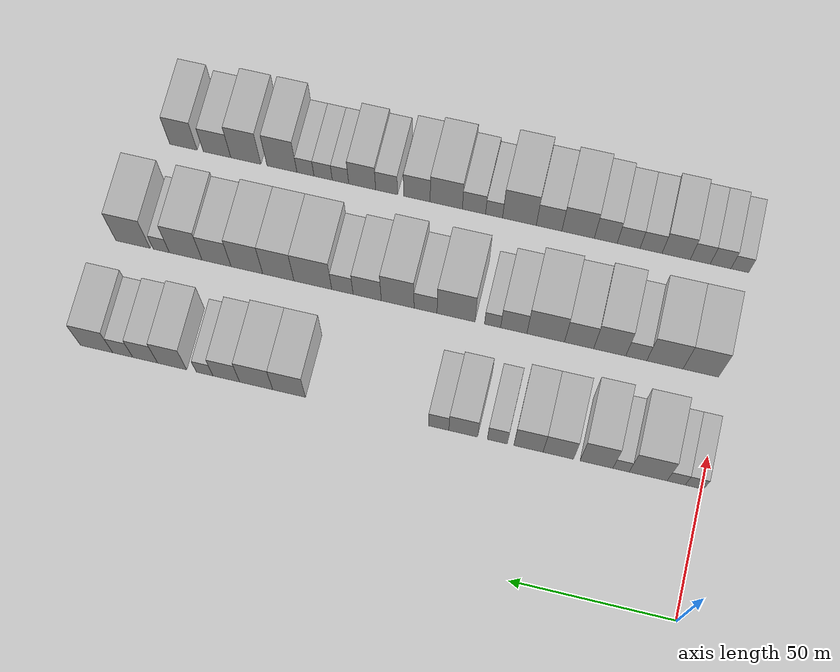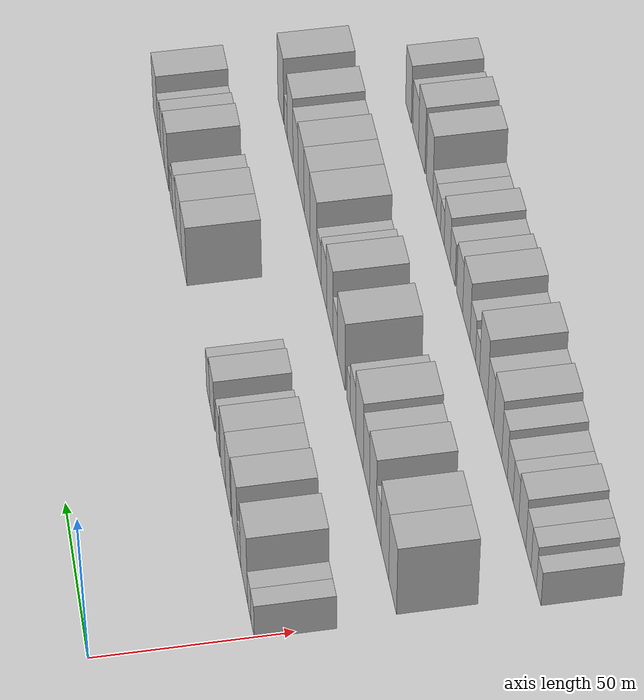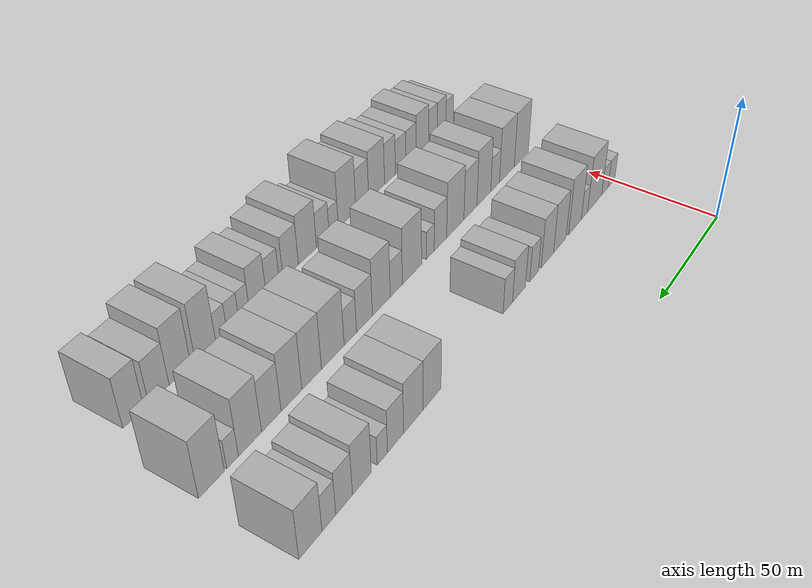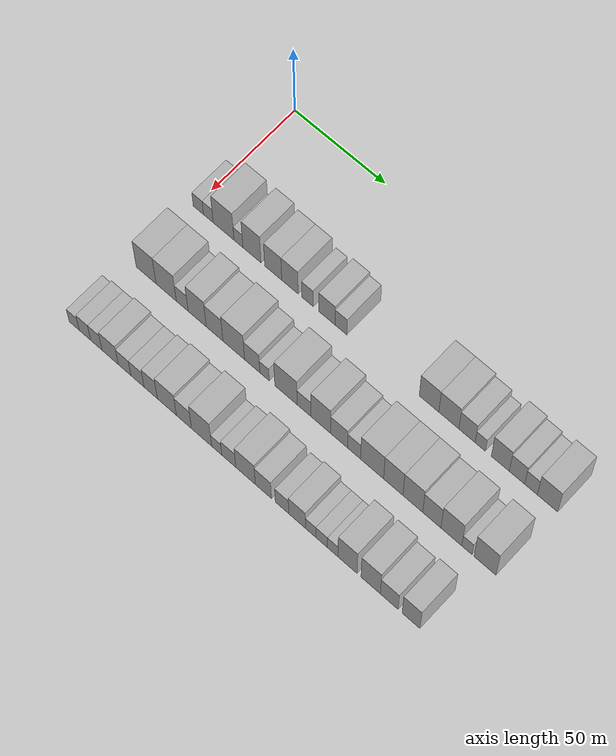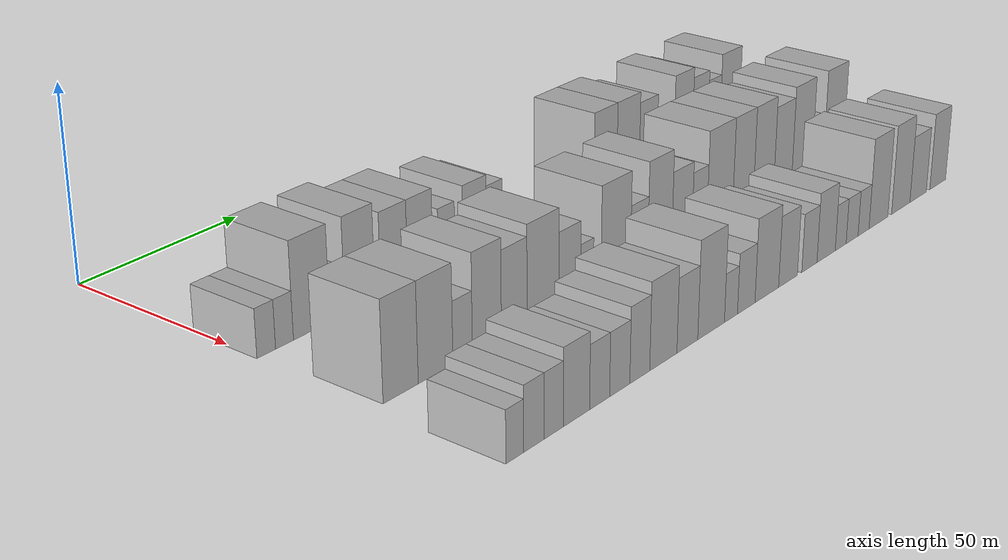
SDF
<sdf version="1.6">
 <world name="default">
  <model name="building_44">
   <static>1</static>
   <pose>50.0000 2.2003 0 0.000000 0.000000 0.000000</pose>
   <link name="link">
    <pose>0 0 6.00 0 0 0</pose>
    <collision name="collision"><geometry><box><size>20.0000 5.6250 12.0000</size></box></geometry></collision>
    <visual name="visual">
     <cast_shadows>0</cast_shadows>
     <geometry><box><size>20.0000 5.6250 12.0000</size></box></geometry>
     <material>
      <script>
       <uri>model://HANNAS_wall/materials/scripts</uri>
       <uri>model://HANNAS_wall/materials/textures</uri>
       <name>vrc/HANNAS_wall</name>
      </script>
     </material>
    </visual>
   </link>
  </model>
  <model name="building_45">
   <static>1</static>
   <pose>50.0000 7.7510 0 0.000000 0.000000 0.000000</pose>
   <link name="link">
    <pose>0 0 6.00 0 0 0</pose>
    <collision name="collision"><geometry><box><size>20.0000 5.4763 12.0000</size></box></geometry></collision>
    <visual name="visual">
     <cast_shadows>0</cast_shadows>
     <geometry><box><size>20.0000 5.4763 12.0000</size></box></geometry>
     <material>
      <script>
       <uri>model://HANNAS_wall/materials/scripts</uri>
       <uri>model://HANNAS_wall/materials/textures</uri>
       <name>vrc/HANNAS_wall</name>
      </script>
     </material>
    </visual>
   </link>
  </model>
  <model name="building_46">
   <static>1</static>
   <pose>50.0000 16.2468 0 0.000000 0.000000 0.000000</pose>
   <link name="link">
    <pose>0 0 12.00 0 0 0</pose>
    <collision name="collision"><geometry><box><size>20.0000 11.5153 24.0000</size></box></geometry></collision>
    <visual name="visual">
     <cast_shadows>0</cast_shadows>
     <geometry><box><size>20.0000 11.5153 24.0000</size></box></geometry>
     <material>
      <script>
       <uri>model://HANNAS_wall/materials/scripts</uri>
       <uri>model://HANNAS_wall/materials/textures</uri>
       <name>vrc/HANNAS_wall</name>
      </script>
     </material>
    </visual>
   </link>
  </model>
  <model name="building_47">
   <static>1</static>
   <pose>50.0000 24.4752 0 0.000000 0.000000 0.000000</pose>
   <link name="link">
    <pose>0 0 6.00 0 0 0</pose>
    <collision name="collision"><geometry><box><size>20.0000 4.9416 12.0000</size></box></geometry></collision>
    <visual name="visual">
     <cast_shadows>0</cast_shadows>
     <geometry><box><size>20.0000 4.9416 12.0000</size></box></geometry>
     <material>
      <script>
       <uri>model://HANNAS_wall/materials/scripts</uri>
       <uri>model://HANNAS_wall/materials/textures</uri>
       <name>vrc/HANNAS_wall</name>
      </script>
     </material>
    </visual>
   </link>
  </model>
  <model name="building_48">
   <static>1</static>
   <pose>50.0000 31.9420 0 0.000000 0.000000 0.000000</pose>
   <link name="link">
    <pose>0 0 12.00 0 0 0</pose>
    <collision name="collision"><geometry><box><size>20.0000 9.9919 24.0000</size></box></geometry></collision>
    <visual name="visual">
     <cast_shadows>0</cast_shadows>
     <geometry><box><size>20.0000 9.9919 24.0000</size></box></geometry>
     <material>
      <script>
       <uri>model://HANNAS_wall/materials/scripts</uri>
       <uri>model://HANNAS_wall/materials/textures</uri>
       <name>vrc/HANNAS_wall</name>
      </script>
     </material>
    </visual>
   </link>
  </model>
  <model name="building_49">
   <static>1</static>
   <pose>50.0000 43.5863 0 0.000000 0.000000 0.000000</pose>
   <link name="link">
    <pose>0 0 10.50 0 0 0</pose>
    <collision name="collision"><geometry><box><size>20.0000 9.2966 21.0000</size></box></geometry></collision>
    <visual name="visual">
     <cast_shadows>0</cast_shadows>
     <geometry><box><size>20.0000 9.2966 21.0000</size></box></geometry>
     <material>
      <script>
       <uri>model://HANNAS_wall/materials/scripts</uri>
       <uri>model://HANNAS_wall/materials/textures</uri>
       <name>vrc/HANNAS_wall</name>
      </script>
     </material>
    </visual>
   </link>
  </model>
  <model name="building_50">
   <static>1</static>
   <pose>50.0000 52.7178 0 0.000000 0.000000 0.000000</pose>
   <link name="link">
    <pose>0 0 10.50 0 0 0</pose>
    <collision name="collision"><geometry><box><size>20.0000 8.9664 21.0000</size></box></geometry></collision>
    <visual name="visual">
     <cast_shadows>0</cast_shadows>
     <geometry><box><size>20.0000 8.9664 21.0000</size></box></geometry>
     <material>
      <script>
       <uri>model://HANNAS_wall/materials/scripts</uri>
       <uri>model://HANNAS_wall/materials/textures</uri>
       <name>vrc/HANNAS_wall</name>
      </script>
     </material>
    </visual>
   </link>
  </model>
  <model name="building_51">
   <static>1</static>
   <pose>50.0000 62.2641 0 0.000000 0.000000 0.000000</pose>
   <link name="link">
    <pose>0 0 7.50 0 0 0</pose>
    <collision name="collision"><geometry><box><size>20.0000 6.1261 15.0000</size></box></geometry></collision>
    <visual name="visual">
     <cast_shadows>0</cast_shadows>
     <geometry><box><size>20.0000 6.1261 15.0000</size></box></geometry>
     <material>
      <script>
       <uri>model://HANNAS_wall/materials/scripts</uri>
       <uri>model://HANNAS_wall/materials/textures</uri>
       <name>vrc/HANNAS_wall</name>
      </script>
     </material>
    </visual>
   </link>
  </model>
  <model name="building_52">
   <static>1</static>
   <pose>50.0000 72.7436 0 0.000000 0.000000 0.000000</pose>
   <link name="link">
    <pose>0 0 9.00 0 0 0</pose>
    <collision name="collision"><geometry><box><size>20.0000 8.8330 18.0000</size></box></geometry></collision>
    <visual name="visual">
     <cast_shadows>0</cast_shadows>
     <geometry><box><size>20.0000 8.8330 18.0000</size></box></geometry>
     <material>
      <script>
       <uri>model://HANNAS_wall/materials/scripts</uri>
       <uri>model://HANNAS_wall/materials/textures</uri>
       <name>vrc/HANNAS_wall</name>
      </script>
     </material>
    </visual>
   </link>
  </model>
  <model name="building_53">
   <static>1</static>
   <pose>50.0000 80.2752 0 0.000000 0.000000 0.000000</pose>
   <link name="link">
    <pose>0 0 7.50 0 0 0</pose>
    <collision name="collision"><geometry><box><size>20.0000 6.2301 15.0000</size></box></geometry></collision>
    <visual name="visual">
     <cast_shadows>0</cast_shadows>
     <geometry><box><size>20.0000 6.2301 15.0000</size></box></geometry>
     <material>
      <script>
       <uri>model://HANNAS_wall/materials/scripts</uri>
       <uri>model://HANNAS_wall/materials/textures</uri>
       <name>vrc/HANNAS_wall</name>
      </script>
     </material>
    </visual>
   </link>
  </model>
  <model name="building_54">
   <static>1</static>
   <pose>50.0000 126.6879 0 0.000000 0.000000 0.000000</pose>
   <link name="link">
    <pose>0 0 10.50 0 0 0</pose>
    <collision name="collision"><geometry><box><size>20.0000 10.1985 21.0000</size></box></geometry></collision>
    <visual name="visual">
     <cast_shadows>0</cast_shadows>
     <geometry><box><size>20.0000 10.1985 21.0000</size></box></geometry>
     <material>
      <script>
       <uri>model://HANNAS_wall/materials/scripts</uri>
       <uri>model://HANNAS_wall/materials/textures</uri>
       <name>vrc/HANNAS_wall</name>
      </script>
     </material>
    </visual>
   </link>
  </model>
  <model name="building_55">
   <static>1</static>
   <pose>50.0000 136.9837 0 0.000000 0.000000 0.000000</pose>
   <link name="link">
    <pose>0 0 10.50 0 0 0</pose>
    <collision name="collision"><geometry><box><size>20.0000 10.3931 21.0000</size></box></geometry></collision>
    <visual name="visual">
     <cast_shadows>0</cast_shadows>
     <geometry><box><size>20.0000 10.3931 21.0000</size></box></geometry>
     <material>
      <script>
       <uri>model://HANNAS_wall/materials/scripts</uri>
       <uri>model://HANNAS_wall/materials/textures</uri>
       <name>vrc/HANNAS_wall</name>
      </script>
     </material>
    </visual>
   </link>
  </model>
  <model name="building_56">
   <static>1</static>
   <pose>50.0000 146.3656 0 0.000000 0.000000 0.000000</pose>
   <link name="link">
    <pose>0 0 9.00 0 0 0</pose>
    <collision name="collision"><geometry><box><size>20.0000 8.3706 18.0000</size></box></geometry></collision>
    <visual name="visual">
     <cast_shadows>0</cast_shadows>
     <geometry><box><size>20.0000 8.3706 18.0000</size></box></geometry>
     <material>
      <script>
       <uri>model://HANNAS_wall/materials/scripts</uri>
       <uri>model://HANNAS_wall/materials/textures</uri>
       <name>vrc/HANNAS_wall</name>
      </script>
     </material>
    </visual>
   </link>
  </model>
  <model name="building_57">
   <static>1</static>
   <pose>50.0000 153.1683 0 0.000000 0.000000 0.000000</pose>
   <link name="link">
    <pose>0 0 6.00 0 0 0</pose>
    <collision name="collision"><geometry><box><size>20.0000 5.2348 12.0000</size></box></geometry></collision>
    <visual name="visual">
     <cast_shadows>0</cast_shadows>
     <geometry><box><size>20.0000 5.2348 12.0000</size></box></geometry>
     <material>
      <script>
       <uri>model://HANNAS_wall/materials/scripts</uri>
       <uri>model://HANNAS_wall/materials/textures</uri>
       <name>vrc/HANNAS_wall</name>
      </script>
     </material>
    </visual>
   </link>
  </model>
  <model name="building_58">
   <static>1</static>
   <pose>50.0000 163.3653 0 0.000000 0.000000 0.000000</pose>
   <link name="link">
    <pose>0 0 10.50 0 0 0</pose>
    <collision name="collision"><geometry><box><size>20.0000 9.1591 21.0000</size></box></geometry></collision>
    <visual name="visual">
     <cast_shadows>0</cast_shadows>
     <geometry><box><size>20.0000 9.1591 21.0000</size></box></geometry>
     <material>
      <script>
       <uri>model://HANNAS_wall/materials/scripts</uri>
       <uri>model://HANNAS_wall/materials/textures</uri>
       <name>vrc/HANNAS_wall</name>
      </script>
     </material>
    </visual>
   </link>
  </model>
  <model name="building_59">
   <static>1</static>
   <pose>50.0000 171.8690 0 0.000000 0.000000 0.000000</pose>
   <link name="link">
    <pose>0 0 9.00 0 0 0</pose>
    <collision name="collision"><geometry><box><size>20.0000 7.8484 18.0000</size></box></geometry></collision>
    <visual name="visual">
     <cast_shadows>0</cast_shadows>
     <geometry><box><size>20.0000 7.8484 18.0000</size></box></geometry>
     <material>
      <script>
       <uri>model://HANNAS_wall/materials/scripts</uri>
       <uri>model://HANNAS_wall/materials/textures</uri>
       <name>vrc/HANNAS_wall</name>
      </script>
     </material>
    </visual>
   </link>
  </model>
  <model name="building_60">
   <static>1</static>
   <pose>50.0000 178.9690 0 0.000000 0.000000 0.000000</pose>
   <link name="link">
    <pose>0 0 7.50 0 0 0</pose>
    <collision name="collision"><geometry><box><size>20.0000 6.3515 15.0000</size></box></geometry></collision>
    <visual name="visual">
     <cast_shadows>0</cast_shadows>
     <geometry><box><size>20.0000 6.3515 15.0000</size></box></geometry>
     <material>
      <script>
       <uri>model://HANNAS_wall/materials/scripts</uri>
       <uri>model://HANNAS_wall/materials/textures</uri>
       <name>vrc/HANNAS_wall</name>
      </script>
     </material>
    </visual>
   </link>
  </model>
  <model name="building_61">
   <static>1</static>
   <pose>50.0000 187.2679 0 0.000000 0.000000 0.000000</pose>
   <link name="link">
    <pose>0 0 10.50 0 0 0</pose>
    <collision name="collision"><geometry><box><size>20.0000 10.2464 21.0000</size></box></geometry></collision>
    <visual name="visual">
     <cast_shadows>0</cast_shadows>
     <geometry><box><size>20.0000 10.2464 21.0000</size></box></geometry>
     <material>
      <script>
       <uri>model://HANNAS_wall/materials/scripts</uri>
       <uri>model://HANNAS_wall/materials/textures</uri>
       <name>vrc/HANNAS_wall</name>
      </script>
     </material>
    </visual>
   </link>
  </model>
  <model name="building_123">
   <static>1</static>
   <pose>85.0000 6.8493 0 0.000000 0.000000 0.000000</pose>
   <link name="link">
    <pose>0 0 12.00 0 0 0</pose>
    <collision name="collision"><geometry><box><size>20.0000 10.9548 24.0000</size></box></geometry></collision>
    <visual name="visual">
     <cast_shadows>0</cast_shadows>
     <geometry><box><size>20.0000 10.9548 24.0000</size></box></geometry>
     <material>
      <script>
       <uri>model://HANNAS_wall/materials/scripts</uri>
       <uri>model://HANNAS_wall/materials/textures</uri>
       <name>vrc/HANNAS_wall</name>
      </script>
     </material>
    </visual>
   </link>
  </model>
  <model name="building_124">
   <static>1</static>
   <pose>85.0000 17.9413 0 0.000000 0.000000 0.000000</pose>
   <link name="link">
    <pose>0 0 12.00 0 0 0</pose>
    <collision name="collision"><geometry><box><size>20.0000 11.2292 24.0000</size></box></geometry></collision>
    <visual name="visual">
     <cast_shadows>0</cast_shadows>
     <geometry><box><size>20.0000 11.2292 24.0000</size></box></geometry>
     <material>
      <script>
       <uri>model://HANNAS_wall/materials/scripts</uri>
       <uri>model://HANNAS_wall/materials/textures</uri>
       <name>vrc/HANNAS_wall</name>
      </script>
     </material>
    </visual>
   </link>
  </model>
  <model name="building_125">
   <static>1</static>
   <pose>85.0000 26.8105 0 0.000000 0.000000 0.000000</pose>
   <link name="link">
    <pose>0 0 7.50 0 0 0</pose>
    <collision name="collision"><geometry><box><size>20.0000 6.5093 15.0000</size></box></geometry></collision>
    <visual name="visual">
     <cast_shadows>0</cast_shadows>
     <geometry><box><size>20.0000 6.5093 15.0000</size></box></geometry>
     <material>
      <script>
       <uri>model://HANNAS_wall/materials/scripts</uri>
       <uri>model://HANNAS_wall/materials/textures</uri>
       <name>vrc/HANNAS_wall</name>
      </script>
     </material>
    </visual>
   </link>
  </model>
  <model name="building_126">
   <static>1</static>
   <pose>85.0000 35.0439 0 0.000000 0.000000 0.000000</pose>
   <link name="link">
    <pose>0 0 12.00 0 0 0</pose>
    <collision name="collision"><geometry><box><size>20.0000 9.9575 24.0000</size></box></geometry></collision>
    <visual name="visual">
     <cast_shadows>0</cast_shadows>
     <geometry><box><size>20.0000 9.9575 24.0000</size></box></geometry>
     <material>
      <script>
       <uri>model://HANNAS_wall/materials/scripts</uri>
       <uri>model://HANNAS_wall/materials/textures</uri>
       <name>vrc/HANNAS_wall</name>
      </script>
     </material>
    </visual>
   </link>
  </model>
  <model name="building_127">
   <static>1</static>
   <pose>85.0000 44.5752 0 0.000000 0.000000 0.000000</pose>
   <link name="link">
    <pose>0 0 10.50 0 0 0</pose>
    <collision name="collision"><geometry><box><size>20.0000 9.1050 21.0000</size></box></geometry></collision>
    <visual name="visual">
     <cast_shadows>0</cast_shadows>
     <geometry><box><size>20.0000 9.1050 21.0000</size></box></geometry>
     <material>
      <script>
       <uri>model://HANNAS_wall/materials/scripts</uri>
       <uri>model://HANNAS_wall/materials/textures</uri>
       <name>vrc/HANNAS_wall</name>
      </script>
     </material>
    </visual>
   </link>
  </model>
  <model name="building_128">
   <static>1</static>
   <pose>85.0000 54.9824 0 0.000000 0.000000 0.000000</pose>
   <link name="link">
    <pose>0 0 12.00 0 0 0</pose>
    <collision name="collision"><geometry><box><size>20.0000 11.7094 24.0000</size></box></geometry></collision>
    <visual name="visual">
     <cast_shadows>0</cast_shadows>
     <geometry><box><size>20.0000 11.7094 24.0000</size></box></geometry>
     <material>
      <script>
       <uri>model://HANNAS_wall/materials/scripts</uri>
       <uri>model://HANNAS_wall/materials/textures</uri>
       <name>vrc/HANNAS_wall</name>
      </script>
     </material>
    </visual>
   </link>
  </model>
  <model name="building_129">
   <static>1</static>
   <pose>85.0000 64.9468 0 0.000000 0.000000 0.000000</pose>
   <link name="link">
    <pose>0 0 9.00 0 0 0</pose>
    <collision name="collision"><geometry><box><size>20.0000 8.2195 18.0000</size></box></geometry></collision>
    <visual name="visual">
     <cast_shadows>0</cast_shadows>
     <geometry><box><size>20.0000 8.2195 18.0000</size></box></geometry>
     <material>
      <script>
       <uri>model://HANNAS_wall/materials/scripts</uri>
       <uri>model://HANNAS_wall/materials/textures</uri>
       <name>vrc/HANNAS_wall</name>
      </script>
     </material>
    </visual>
   </link>
  </model>
  <model name="building_130">
   <static>1</static>
   <pose>85.0000 71.5806 0 0.000000 0.000000 0.000000</pose>
   <link name="link">
    <pose>0 0 6.00 0 0 0</pose>
    <collision name="collision"><geometry><box><size>20.0000 5.0481 12.0000</size></box></geometry></collision>
    <visual name="visual">
     <cast_shadows>0</cast_shadows>
     <geometry><box><size>20.0000 5.0481 12.0000</size></box></geometry>
     <material>
      <script>
       <uri>model://HANNAS_wall/materials/scripts</uri>
       <uri>model://HANNAS_wall/materials/textures</uri>
       <name>vrc/HANNAS_wall</name>
      </script>
     </material>
    </visual>
   </link>
  </model>
  <model name="building_131">
   <static>1</static>
   <pose>85.0000 83.0615 0 0.000000 0.000000 0.000000</pose>
   <link name="link">
    <pose>0 0 12.00 0 0 0</pose>
    <collision name="collision"><geometry><box><size>20.0000 11.9136 24.0000</size></box></geometry></collision>
    <visual name="visual">
     <cast_shadows>0</cast_shadows>
     <geometry><box><size>20.0000 11.9136 24.0000</size></box></geometry>
     <material>
      <script>
       <uri>model://HANNAS_wall/materials/scripts</uri>
       <uri>model://HANNAS_wall/materials/textures</uri>
       <name>vrc/HANNAS_wall</name>
      </script>
     </material>
    </visual>
   </link>
  </model>
  <model name="building_132">
   <static>1</static>
   <pose>85.0000 92.6340 0 0.000000 0.000000 0.000000</pose>
   <link name="link">
    <pose>0 0 7.50 0 0 0</pose>
    <collision name="collision"><geometry><box><size>20.0000 7.2314 15.0000</size></box></geometry></collision>
    <visual name="visual">
     <cast_shadows>0</cast_shadows>
     <geometry><box><size>20.0000 7.2314 15.0000</size></box></geometry>
     <material>
      <script>
       <uri>model://HANNAS_wall/materials/scripts</uri>
       <uri>model://HANNAS_wall/materials/textures</uri>
       <name>vrc/HANNAS_wall</name>
      </script>
     </material>
    </visual>
   </link>
  </model>
  <model name="building_133">
   <static>1</static>
   <pose>85.0000 101.4247 0 0.000000 0.000000 0.000000</pose>
   <link name="link">
    <pose>0 0 12.00 0 0 0</pose>
    <collision name="collision"><geometry><box><size>20.0000 10.3501 24.0000</size></box></geometry></collision>
    <visual name="visual">
     <cast_shadows>0</cast_shadows>
     <geometry><box><size>20.0000 10.3501 24.0000</size></box></geometry>
     <material>
      <script>
       <uri>model://HANNAS_wall/materials/scripts</uri>
       <uri>model://HANNAS_wall/materials/textures</uri>
       <name>vrc/HANNAS_wall</name>
      </script>
     </material>
    </visual>
   </link>
  </model>
  <model name="building_134">
   <static>1</static>
   <pose>85.0000 111.0692 0 0.000000 0.000000 0.000000</pose>
   <link name="link">
    <pose>0 0 9.00 0 0 0</pose>
    <collision name="collision"><geometry><box><size>20.0000 8.9388 18.0000</size></box></geometry></collision>
    <visual name="visual">
     <cast_shadows>0</cast_shadows>
     <geometry><box><size>20.0000 8.9388 18.0000</size></box></geometry>
     <material>
      <script>
       <uri>model://HANNAS_wall/materials/scripts</uri>
       <uri>model://HANNAS_wall/materials/textures</uri>
       <name>vrc/HANNAS_wall</name>
      </script>
     </material>
    </visual>
   </link>
  </model>
  <model name="building_135">
   <static>1</static>
   <pose>85.0000 118.9207 0 0.000000 0.000000 0.000000</pose>
   <link name="link">
    <pose>0 0 7.50 0 0 0</pose>
    <collision name="collision"><geometry><box><size>20.0000 6.7641 15.0000</size></box></geometry></collision>
    <visual name="visual">
     <cast_shadows>0</cast_shadows>
     <geometry><box><size>20.0000 6.7641 15.0000</size></box></geometry>
     <material>
      <script>
       <uri>model://HANNAS_wall/materials/scripts</uri>
       <uri>model://HANNAS_wall/materials/textures</uri>
       <name>vrc/HANNAS_wall</name>
      </script>
     </material>
    </visual>
   </link>
  </model>
  <model name="building_136">
   <static>1</static>
   <pose>85.0000 128.2996 0 0.000000 0.000000 0.000000</pose>
   <link name="link">
    <pose>0 0 12.00 0 0 0</pose>
    <collision name="collision"><geometry><box><size>20.0000 11.9937 24.0000</size></box></geometry></collision>
    <visual name="visual">
     <cast_shadows>0</cast_shadows>
     <geometry><box><size>20.0000 11.9937 24.0000</size></box></geometry>
     <material>
      <script>
       <uri>model://HANNAS_wall/materials/scripts</uri>
       <uri>model://HANNAS_wall/materials/textures</uri>
       <name>vrc/HANNAS_wall</name>
      </script>
     </material>
    </visual>
   </link>
  </model>
  <model name="building_137">
   <static>1</static>
   <pose>85.0000 139.2874 0 0.000000 0.000000 0.000000</pose>
   <link name="link">
    <pose>0 0 12.00 0 0 0</pose>
    <collision name="collision"><geometry><box><size>20.0000 9.9819 24.0000</size></box></geometry></collision>
    <visual name="visual">
     <cast_shadows>0</cast_shadows>
     <geometry><box><size>20.0000 9.9819 24.0000</size></box></geometry>
     <material>
      <script>
       <uri>model://HANNAS_wall/materials/scripts</uri>
       <uri>model://HANNAS_wall/materials/textures</uri>
       <name>vrc/HANNAS_wall</name>
      </script>
     </material>
    </visual>
   </link>
  </model>
  <model name="building_138">
   <static>1</static>
   <pose>85.0000 149.3374 0 0.000000 0.000000 0.000000</pose>
   <link name="link">
    <pose>0 0 12.00 0 0 0</pose>
    <collision name="collision"><geometry><box><size>20.0000 10.1182 24.0000</size></box></geometry></collision>
    <visual name="visual">
     <cast_shadows>0</cast_shadows>
     <geometry><box><size>20.0000 10.1182 24.0000</size></box></geometry>
     <material>
      <script>
       <uri>model://HANNAS_wall/materials/scripts</uri>
       <uri>model://HANNAS_wall/materials/textures</uri>
       <name>vrc/HANNAS_wall</name>
      </script>
     </material>
    </visual>
   </link>
  </model>
  <model name="building_139">
   <static>1</static>
   <pose>85.0000 159.0385 0 0.000000 0.000000 0.000000</pose>
   <link name="link">
    <pose>0 0 10.50 0 0 0</pose>
    <collision name="collision"><geometry><box><size>20.0000 9.2841 21.0000</size></box></geometry></collision>
    <visual name="visual">
     <cast_shadows>0</cast_shadows>
     <geometry><box><size>20.0000 9.2841 21.0000</size></box></geometry>
     <material>
      <script>
       <uri>model://HANNAS_wall/materials/scripts</uri>
       <uri>model://HANNAS_wall/materials/textures</uri>
       <name>vrc/HANNAS_wall</name>
      </script>
     </material>
    </visual>
   </link>
  </model>
  <model name="building_140">
   <static>1</static>
   <pose>85.0000 168.9399 0 0.000000 0.000000 0.000000</pose>
   <link name="link">
    <pose>0 0 12.00 0 0 0</pose>
    <collision name="collision"><geometry><box><size>20.0000 10.5186 24.0000</size></box></geometry></collision>
    <visual name="visual">
     <cast_shadows>0</cast_shadows>
     <geometry><box><size>20.0000 10.5186 24.0000</size></box></geometry>
     <material>
      <script>
       <uri>model://HANNAS_wall/materials/scripts</uri>
       <uri>model://HANNAS_wall/materials/textures</uri>
       <name>vrc/HANNAS_wall</name>
      </script>
     </material>
    </visual>
   </link>
  </model>
  <model name="building_141">
   <static>1</static>
   <pose>85.0000 176.7960 0 0.000000 0.000000 0.000000</pose>
   <link name="link">
    <pose>0 0 6.00 0 0 0</pose>
    <collision name="collision"><geometry><box><size>20.0000 5.1936 12.0000</size></box></geometry></collision>
    <visual name="visual">
     <cast_shadows>0</cast_shadows>
     <geometry><box><size>20.0000 5.1936 12.0000</size></box></geometry>
     <material>
      <script>
       <uri>model://HANNAS_wall/materials/scripts</uri>
       <uri>model://HANNAS_wall/materials/textures</uri>
       <name>vrc/HANNAS_wall</name>
      </script>
     </material>
    </visual>
   </link>
  </model>
  <model name="building_142">
   <static>1</static>
   <pose>85.0000 185.9102 0 0.000000 0.000000 0.000000</pose>
   <link name="link">
    <pose>0 0 12.00 0 0 0</pose>
    <collision name="collision"><geometry><box><size>20.0000 11.0347 24.0000</size></box></geometry></collision>
    <visual name="visual">
     <cast_shadows>0</cast_shadows>
     <geometry><box><size>20.0000 11.0347 24.0000</size></box></geometry>
     <material>
      <script>
       <uri>model://HANNAS_wall/materials/scripts</uri>
       <uri>model://HANNAS_wall/materials/textures</uri>
       <name>vrc/HANNAS_wall</name>
      </script>
     </material>
    </visual>
   </link>
  </model>
  <model name="building_200">
   <static>1</static>
   <pose>120.0000 1.1785 0 0.000000 0.000000 0.000000</pose>
   <link name="link">
    <pose>0 0 6.00 0 0 0</pose>
    <collision name="collision"><geometry><box><size>20.0000 5.5569 12.0000</size></box></geometry></collision>
    <visual name="visual">
     <cast_shadows>0</cast_shadows>
     <geometry><box><size>20.0000 5.5569 12.0000</size></box></geometry>
     <material>
      <script>
       <uri>model://HANNAS_wall/materials/scripts</uri>
       <uri>model://HANNAS_wall/materials/textures</uri>
       <name>vrc/HANNAS_wall</name>
      </script>
     </material>
    </visual>
   </link>
  </model>
  <model name="building_201">
   <static>1</static>
   <pose>120.0000 7.1990 0 0.000000 0.000000 0.000000</pose>
   <link name="link">
    <pose>0 0 7.50 0 0 0</pose>
    <collision name="collision"><geometry><box><size>20.0000 6.4841 15.0000</size></box></geometry></collision>
    <visual name="visual">
     <cast_shadows>0</cast_shadows>
     <geometry><box><size>20.0000 6.4841 15.0000</size></box></geometry>
     <material>
      <script>
       <uri>model://HANNAS_wall/materials/scripts</uri>
       <uri>model://HANNAS_wall/materials/textures</uri>
       <name>vrc/HANNAS_wall</name>
      </script>
     </material>
    </visual>
   </link>
  </model>
  <model name="building_202">
   <static>1</static>
   <pose>120.0000 13.5902 0 0.000000 0.000000 0.000000</pose>
   <link name="link">
    <pose>0 0 7.50 0 0 0</pose>
    <collision name="collision"><geometry><box><size>20.0000 6.2982 15.0000</size></box></geometry></collision>
    <visual name="visual">
     <cast_shadows>0</cast_shadows>
     <geometry><box><size>20.0000 6.2982 15.0000</size></box></geometry>
     <material>
      <script>
       <uri>model://HANNAS_wall/materials/scripts</uri>
       <uri>model://HANNAS_wall/materials/textures</uri>
       <name>vrc/HANNAS_wall</name>
      </script>
     </material>
    </visual>
   </link>
  </model>
  <model name="building_203">
   <static>1</static>
   <pose>120.0000 21.1887 0 0.000000 0.000000 0.000000</pose>
   <link name="link">
    <pose>0 0 9.00 0 0 0</pose>
    <collision name="collision"><geometry><box><size>20.0000 8.8990 18.0000</size></box></geometry></collision>
    <visual name="visual">
     <cast_shadows>0</cast_shadows>
     <geometry><box><size>20.0000 8.8990 18.0000</size></box></geometry>
     <material>
      <script>
       <uri>model://HANNAS_wall/materials/scripts</uri>
       <uri>model://HANNAS_wall/materials/textures</uri>
       <name>vrc/HANNAS_wall</name>
      </script>
     </material>
    </visual>
   </link>
  </model>
  <model name="building_204">
   <static>1</static>
   <pose>120.0000 29.1174 0 0.000000 0.000000 0.000000</pose>
   <link name="link">
    <pose>0 0 7.50 0 0 0</pose>
    <collision name="collision"><geometry><box><size>20.0000 6.9584 15.0000</size></box></geometry></collision>
    <visual name="visual">
     <cast_shadows>0</cast_shadows>
     <geometry><box><size>20.0000 6.9584 15.0000</size></box></geometry>
     <material>
      <script>
       <uri>model://HANNAS_wall/materials/scripts</uri>
       <uri>model://HANNAS_wall/materials/textures</uri>
       <name>vrc/HANNAS_wall</name>
      </script>
     </material>
    </visual>
   </link>
  </model>
  <model name="building_205">
   <static>1</static>
   <pose>120.0000 36.1980 0 0.000000 0.000000 0.000000</pose>
   <link name="link">
    <pose>0 0 7.50 0 0 0</pose>
    <collision name="collision"><geometry><box><size>20.0000 7.2027 15.0000</size></box></geometry></collision>
    <visual name="visual">
     <cast_shadows>0</cast_shadows>
     <geometry><box><size>20.0000 7.2027 15.0000</size></box></geometry>
     <material>
      <script>
       <uri>model://HANNAS_wall/materials/scripts</uri>
       <uri>model://HANNAS_wall/materials/textures</uri>
       <name>vrc/HANNAS_wall</name>
      </script>
     </material>
    </visual>
   </link>
  </model>
  <model name="building_206">
   <static>1</static>
   <pose>120.0000 43.4399 0 0.000000 0.000000 0.000000</pose>
   <link name="link">
    <pose>0 0 9.00 0 0 0</pose>
    <collision name="collision"><geometry><box><size>20.0000 7.2811 18.0000</size></box></geometry></collision>
    <visual name="visual">
     <cast_shadows>0</cast_shadows>
     <geometry><box><size>20.0000 7.2811 18.0000</size></box></geometry>
     <material>
      <script>
       <uri>model://HANNAS_wall/materials/scripts</uri>
       <uri>model://HANNAS_wall/materials/textures</uri>
       <name>vrc/HANNAS_wall</name>
      </script>
     </material>
    </visual>
   </link>
  </model>
  <model name="building_207">
   <static>1</static>
   <pose>120.0000 52.2263 0 0.000000 0.000000 0.000000</pose>
   <link name="link">
    <pose>0 0 10.50 0 0 0</pose>
    <collision name="collision"><geometry><box><size>20.0000 10.2918 21.0000</size></box></geometry></collision>
    <visual name="visual">
     <cast_shadows>0</cast_shadows>
     <geometry><box><size>20.0000 10.2918 21.0000</size></box></geometry>
     <material>
      <script>
       <uri>model://HANNAS_wall/materials/scripts</uri>
       <uri>model://HANNAS_wall/materials/textures</uri>
       <name>vrc/HANNAS_wall</name>
      </script>
     </material>
    </visual>
   </link>
  </model>
  <model name="building_208">
   <static>1</static>
   <pose>120.0000 61.4399 0 0.000000 0.000000 0.000000</pose>
   <link name="link">
    <pose>0 0 9.00 0 0 0</pose>
    <collision name="collision"><geometry><box><size>20.0000 8.1353 18.0000</size></box></geometry></collision>
    <visual name="visual">
     <cast_shadows>0</cast_shadows>
     <geometry><box><size>20.0000 8.1353 18.0000</size></box></geometry>
     <material>
      <script>
       <uri>model://HANNAS_wall/materials/scripts</uri>
       <uri>model://HANNAS_wall/materials/textures</uri>
       <name>vrc/HANNAS_wall</name>
      </script>
     </material>
    </visual>
   </link>
  </model>
  <model name="building_209">
   <static>1</static>
   <pose>120.0000 70.8892 0 0.000000 0.000000 0.000000</pose>
   <link name="link">
    <pose>0 0 12.00 0 0 0</pose>
    <collision name="collision"><geometry><box><size>20.0000 10.7632 24.0000</size></box></geometry></collision>
    <visual name="visual">
     <cast_shadows>0</cast_shadows>
     <geometry><box><size>20.0000 10.7632 24.0000</size></box></geometry>
     <material>
      <script>
       <uri>model://HANNAS_wall/materials/scripts</uri>
       <uri>model://HANNAS_wall/materials/textures</uri>
       <name>vrc/HANNAS_wall</name>
      </script>
     </material>
    </visual>
   </link>
  </model>
  <model name="building_210">
   <static>1</static>
   <pose>120.0000 78.9757 0 0.000000 0.000000 0.000000</pose>
   <link name="link">
    <pose>0 0 6.00 0 0 0</pose>
    <collision name="collision"><geometry><box><size>20.0000 5.4098 12.0000</size></box></geometry></collision>
    <visual name="visual">
     <cast_shadows>0</cast_shadows>
     <geometry><box><size>20.0000 5.4098 12.0000</size></box></geometry>
     <material>
      <script>
       <uri>model://HANNAS_wall/materials/scripts</uri>
       <uri>model://HANNAS_wall/materials/textures</uri>
       <name>vrc/HANNAS_wall</name>
      </script>
     </material>
    </visual>
   </link>
  </model>
  <model name="building_211">
   <static>1</static>
   <pose>120.0000 85.3964 0 0.000000 0.000000 0.000000</pose>
   <link name="link">
    <pose>0 0 7.50 0 0 0</pose>
    <collision name="collision"><geometry><box><size>20.0000 7.4316 15.0000</size></box></geometry></collision>
    <visual name="visual">
     <cast_shadows>0</cast_shadows>
     <geometry><box><size>20.0000 7.4316 15.0000</size></box></geometry>
     <material>
      <script>
       <uri>model://HANNAS_wall/materials/scripts</uri>
       <uri>model://HANNAS_wall/materials/textures</uri>
       <name>vrc/HANNAS_wall</name>
      </script>
     </material>
    </visual>
   </link>
  </model>
  <model name="building_212">
   <static>1</static>
   <pose>120.0000 94.2787 0 0.000000 0.000000 0.000000</pose>
   <link name="link">
    <pose>0 0 10.50 0 0 0</pose>
    <collision name="collision"><geometry><box><size>20.0000 10.3331 21.0000</size></box></geometry></collision>
    <visual name="visual">
     <cast_shadows>0</cast_shadows>
     <geometry><box><size>20.0000 10.3331 21.0000</size></box></geometry>
     <material>
      <script>
       <uri>model://HANNAS_wall/materials/scripts</uri>
       <uri>model://HANNAS_wall/materials/textures</uri>
       <name>vrc/HANNAS_wall</name>
      </script>
     </material>
    </visual>
   </link>
  </model>
  <model name="building_213">
   <static>1</static>
   <pose>120.0000 103.6803 0 0.000000 0.000000 0.000000</pose>
   <link name="link">
    <pose>0 0 9.00 0 0 0</pose>
    <collision name="collision"><geometry><box><size>20.0000 8.4702 18.0000</size></box></geometry></collision>
    <visual name="visual">
     <cast_shadows>0</cast_shadows>
     <geometry><box><size>20.0000 8.4702 18.0000</size></box></geometry>
     <material>
      <script>
       <uri>model://HANNAS_wall/materials/scripts</uri>
       <uri>model://HANNAS_wall/materials/textures</uri>
       <name>vrc/HANNAS_wall</name>
      </script>
     </material>
    </visual>
   </link>
  </model>
  <model name="building_214">
   <static>1</static>
   <pose>120.0000 113.4442 0 0.000000 0.000000 0.000000</pose>
   <link name="link">
    <pose>0 0 7.50 0 0 0</pose>
    <collision name="collision"><geometry><box><size>20.0000 7.0576 15.0000</size></box></geometry></collision>
    <visual name="visual">
     <cast_shadows>0</cast_shadows>
     <geometry><box><size>20.0000 7.0576 15.0000</size></box></geometry>
     <material>
      <script>
       <uri>model://HANNAS_wall/materials/scripts</uri>
       <uri>model://HANNAS_wall/materials/textures</uri>
       <name>vrc/HANNAS_wall</name>
      </script>
     </material>
    </visual>
   </link>
  </model>
  <model name="building_215">
   <static>1</static>
   <pose>120.0000 121.3395 0 0.000000 0.000000 0.000000</pose>
   <link name="link">
    <pose>0 0 9.00 0 0 0</pose>
    <collision name="collision"><geometry><box><size>20.0000 8.7329 18.0000</size></box></geometry></collision>
    <visual name="visual">
     <cast_shadows>0</cast_shadows>
     <geometry><box><size>20.0000 8.7329 18.0000</size></box></geometry>
     <material>
      <script>
       <uri>model://HANNAS_wall/materials/scripts</uri>
       <uri>model://HANNAS_wall/materials/textures</uri>
       <name>vrc/HANNAS_wall</name>
      </script>
     </material>
    </visual>
   </link>
  </model>
  <model name="building_216">
   <static>1</static>
   <pose>120.0000 128.3638 0 0.000000 0.000000 0.000000</pose>
   <link name="link">
    <pose>0 0 6.00 0 0 0</pose>
    <collision name="collision"><geometry><box><size>20.0000 5.3157 12.0000</size></box></geometry></collision>
    <visual name="visual">
     <cast_shadows>0</cast_shadows>
     <geometry><box><size>20.0000 5.3157 12.0000</size></box></geometry>
     <material>
      <script>
       <uri>model://HANNAS_wall/materials/scripts</uri>
       <uri>model://HANNAS_wall/materials/textures</uri>
       <name>vrc/HANNAS_wall</name>
      </script>
     </material>
    </visual>
   </link>
  </model>
  <model name="building_217">
   <static>1</static>
   <pose>120.0000 133.9833 0 0.000000 0.000000 0.000000</pose>
   <link name="link">
    <pose>0 0 6.00 0 0 0</pose>
    <collision name="collision"><geometry><box><size>20.0000 5.9233 12.0000</size></box></geometry></collision>
    <visual name="visual">
     <cast_shadows>0</cast_shadows>
     <geometry><box><size>20.0000 5.9233 12.0000</size></box></geometry>
     <material>
      <script>
       <uri>model://HANNAS_wall/materials/scripts</uri>
       <uri>model://HANNAS_wall/materials/textures</uri>
       <name>vrc/HANNAS_wall</name>
      </script>
     </material>
    </visual>
   </link>
  </model>
  <model name="building_218">
   <static>1</static>
   <pose>120.0000 139.7128 0 0.000000 0.000000 0.000000</pose>
   <link name="link">
    <pose>0 0 6.00 0 0 0</pose>
    <collision name="collision"><geometry><box><size>20.0000 5.5356 12.0000</size></box></geometry></collision>
    <visual name="visual">
     <cast_shadows>0</cast_shadows>
     <geometry><box><size>20.0000 5.5356 12.0000</size></box></geometry>
     <material>
      <script>
       <uri>model://HANNAS_wall/materials/scripts</uri>
       <uri>model://HANNAS_wall/materials/textures</uri>
       <name>vrc/HANNAS_wall</name>
      </script>
     </material>
    </visual>
   </link>
  </model>
  <model name="building_219">
   <static>1</static>
   <pose>120.0000 147.3385 0 0.000000 0.000000 0.000000</pose>
   <link name="link">
    <pose>0 0 12.00 0 0 0</pose>
    <collision name="collision"><geometry><box><size>20.0000 9.7158 24.0000</size></box></geometry></collision>
    <visual name="visual">
     <cast_shadows>0</cast_shadows>
     <geometry><box><size>20.0000 9.7158 24.0000</size></box></geometry>
     <material>
      <script>
       <uri>model://HANNAS_wall/materials/scripts</uri>
       <uri>model://HANNAS_wall/materials/textures</uri>
       <name>vrc/HANNAS_wall</name>
      </script>
     </material>
    </visual>
   </link>
  </model>
  <model name="building_220">
   <static>1</static>
   <pose>120.0000 159.1139 0 0.000000 0.000000 0.000000</pose>
   <link name="link">
    <pose>0 0 12.00 0 0 0</pose>
    <collision name="collision"><geometry><box><size>20.0000 9.8350 24.0000</size></box></geometry></collision>
    <visual name="visual">
     <cast_shadows>0</cast_shadows>
     <geometry><box><size>20.0000 9.8350 24.0000</size></box></geometry>
     <material>
      <script>
       <uri>model://HANNAS_wall/materials/scripts</uri>
       <uri>model://HANNAS_wall/materials/textures</uri>
       <name>vrc/HANNAS_wall</name>
      </script>
     </material>
    </visual>
   </link>
  </model>
  <model name="building_221">
   <static>1</static>
   <pose>120.0000 168.5306 0 0.000000 0.000000 0.000000</pose>
   <link name="link">
    <pose>0 0 9.00 0 0 0</pose>
    <collision name="collision"><geometry><box><size>20.0000 8.9984 18.0000</size></box></geometry></collision>
    <visual name="visual">
     <cast_shadows>0</cast_shadows>
     <geometry><box><size>20.0000 8.9984 18.0000</size></box></geometry>
     <material>
      <script>
       <uri>model://HANNAS_wall/materials/scripts</uri>
       <uri>model://HANNAS_wall/materials/textures</uri>
       <name>vrc/HANNAS_wall</name>
      </script>
     </material>
    </visual>
   </link>
  </model>
  <model name="building_222">
   <static>1</static>
   <pose>120.0000 179.5160 0 0.000000 0.000000 0.000000</pose>
   <link name="link">
    <pose>0 0 10.50 0 0 0</pose>
    <collision name="collision"><geometry><box><size>20.0000 8.9726 21.0000</size></box></geometry></collision>
    <visual name="visual">
     <cast_shadows>0</cast_shadows>
     <geometry><box><size>20.0000 8.9726 21.0000</size></box></geometry>
     <material>
      <script>
       <uri>model://HANNAS_wall/materials/scripts</uri>
       <uri>model://HANNAS_wall/materials/textures</uri>
       <name>vrc/HANNAS_wall</name>
      </script>
     </material>
    </visual>
   </link>
  </model>
 </world>
</sdf>
